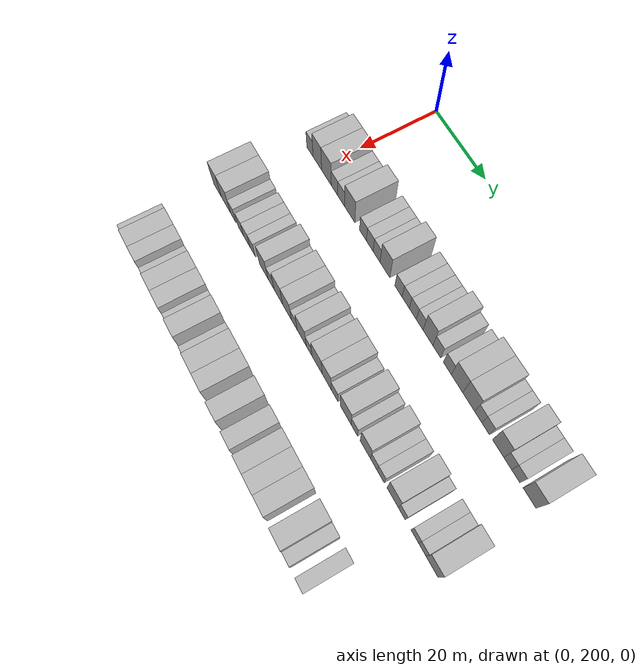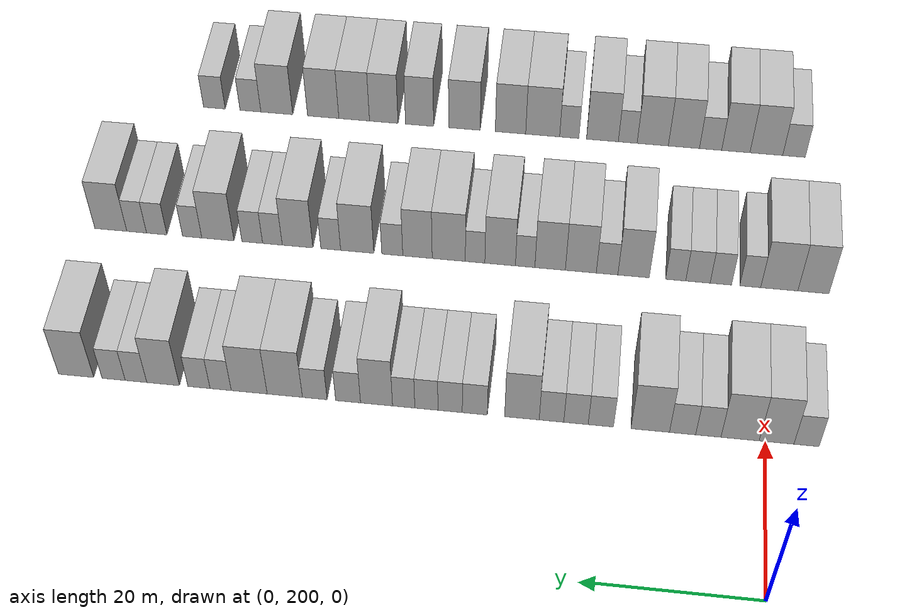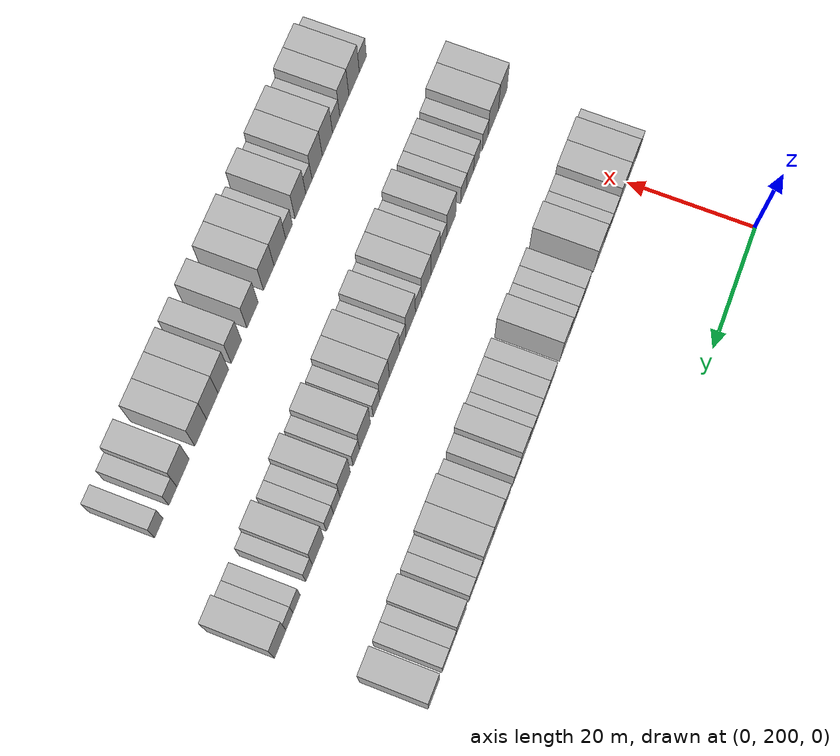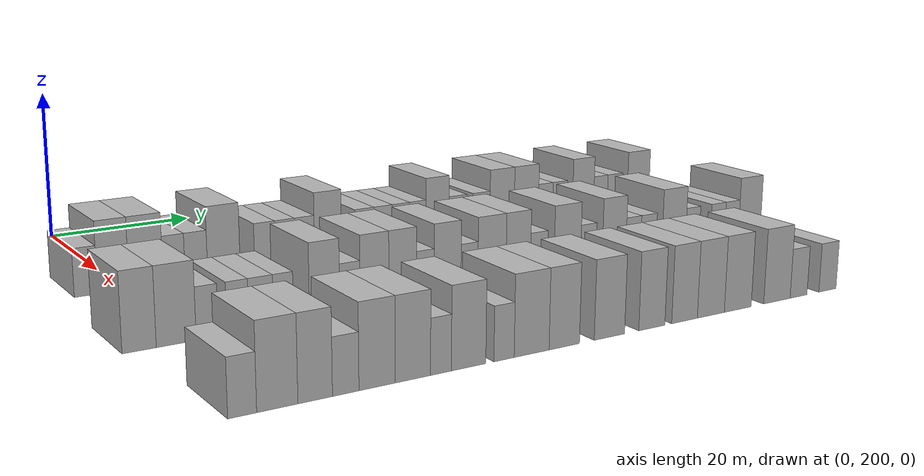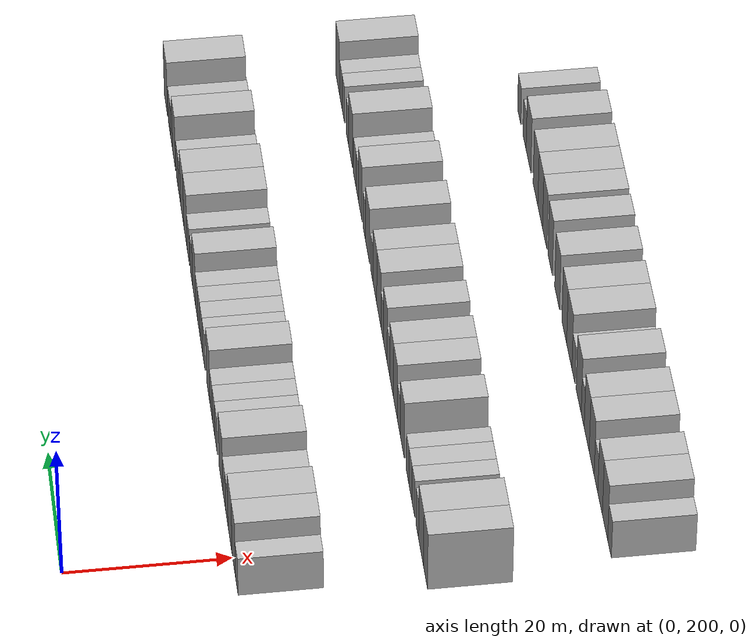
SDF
<sdf version="1.6">
 <world name="default">
  <model name="building_137">
   <static>1</static>
   <pose>25.0000 195.3471 0 0.000000 0.000000 0.000000</pose>
   <link name="link">
    <pose>0 0 3.00 0 0 0</pose>
    <collision name="collision"><geometry><box><size>10.0000 2.8296 6.0000</size></box></geometry></collision>
    <visual name="visual">
     <cast_shadows>0</cast_shadows>
     <geometry><box><size>10.0000 2.8296 6.0000</size></box></geometry>
     <material>
      <script>
       <uri>model://HANNAS_wall/materials/scripts</uri>
       <uri>model://HANNAS_wall/materials/textures</uri>
       <name>vrc/HANNAS_wall</name>
      </script>
     </material>
    </visual>
   </link>
  </model>
  <model name="building_138">
   <static>1</static>
   <pose>25.0000 198.7254 0 0.000000 0.000000 0.000000</pose>
   <link name="link">
    <pose>0 0 4.50 0 0 0</pose>
    <collision name="collision"><geometry><box><size>10.0000 3.9271 9.0000</size></box></geometry></collision>
    <visual name="visual">
     <cast_shadows>0</cast_shadows>
     <geometry><box><size>10.0000 3.9271 9.0000</size></box></geometry>
     <material>
      <script>
       <uri>model://HANNAS_wall/materials/scripts</uri>
       <uri>model://HANNAS_wall/materials/textures</uri>
       <name>vrc/HANNAS_wall</name>
      </script>
     </material>
    </visual>
   </link>
  </model>
  <model name="building_139">
   <static>1</static>
   <pose>25.0000 202.8539 0 0.000000 0.000000 0.000000</pose>
   <link name="link">
    <pose>0 0 4.50 0 0 0</pose>
    <collision name="collision"><geometry><box><size>10.0000 4.3299 9.0000</size></box></geometry></collision>
    <visual name="visual">
     <cast_shadows>0</cast_shadows>
     <geometry><box><size>10.0000 4.3299 9.0000</size></box></geometry>
     <material>
      <script>
       <uri>model://HANNAS_wall/materials/scripts</uri>
       <uri>model://HANNAS_wall/materials/textures</uri>
       <name>vrc/HANNAS_wall</name>
      </script>
     </material>
    </visual>
   </link>
  </model>
  <model name="building_140">
   <static>1</static>
   <pose>25.0000 206.4577 0 0.000000 0.000000 0.000000</pose>
   <link name="link">
    <pose>0 0 3.00 0 0 0</pose>
    <collision name="collision"><geometry><box><size>10.0000 2.8777 6.0000</size></box></geometry></collision>
    <visual name="visual">
     <cast_shadows>0</cast_shadows>
     <geometry><box><size>10.0000 2.8777 6.0000</size></box></geometry>
     <material>
      <script>
       <uri>model://HANNAS_wall/materials/scripts</uri>
       <uri>model://HANNAS_wall/materials/textures</uri>
       <name>vrc/HANNAS_wall</name>
      </script>
     </material>
    </visual>
   </link>
  </model>
  <model name="building_141">
   <static>1</static>
   <pose>25.0000 209.3831 0 0.000000 0.000000 0.000000</pose>
   <link name="link">
    <pose>0 0 3.00 0 0 0</pose>
    <collision name="collision"><geometry><box><size>10.0000 2.9731 6.0000</size></box></geometry></collision>
    <visual name="visual">
     <cast_shadows>0</cast_shadows>
     <geometry><box><size>10.0000 2.9731 6.0000</size></box></geometry>
     <material>
      <script>
       <uri>model://HANNAS_wall/materials/scripts</uri>
       <uri>model://HANNAS_wall/materials/textures</uri>
       <name>vrc/HANNAS_wall</name>
      </script>
     </material>
    </visual>
   </link>
  </model>
  <model name="building_142">
   <static>1</static>
   <pose>25.0000 213.0724 0 0.000000 0.000000 0.000000</pose>
   <link name="link">
    <pose>0 0 4.50 0 0 0</pose>
    <collision name="collision"><geometry><box><size>10.0000 4.4057 9.0000</size></box></geometry></collision>
    <visual name="visual">
     <cast_shadows>0</cast_shadows>
     <geometry><box><size>10.0000 4.4057 9.0000</size></box></geometry>
     <material>
      <script>
       <uri>model://HANNAS_wall/materials/scripts</uri>
       <uri>model://HANNAS_wall/materials/textures</uri>
       <name>vrc/HANNAS_wall</name>
      </script>
     </material>
    </visual>
   </link>
  </model>
  <model name="building_143">
   <static>1</static>
   <pose>25.0000 218.7259 0 0.000000 0.000000 0.000000</pose>
   <link name="link">
    <pose>0 0 3.00 0 0 0</pose>
    <collision name="collision"><geometry><box><size>10.0000 2.9013 6.0000</size></box></geometry></collision>
    <visual name="visual">
     <cast_shadows>0</cast_shadows>
     <geometry><box><size>10.0000 2.9013 6.0000</size></box></geometry>
     <material>
      <script>
       <uri>model://HANNAS_wall/materials/scripts</uri>
       <uri>model://HANNAS_wall/materials/textures</uri>
       <name>vrc/HANNAS_wall</name>
      </script>
     </material>
    </visual>
   </link>
  </model>
  <model name="building_144">
   <static>1</static>
   <pose>25.0000 221.5778 0 0.000000 0.000000 0.000000</pose>
   <link name="link">
    <pose>0 0 3.00 0 0 0</pose>
    <collision name="collision"><geometry><box><size>10.0000 2.8024 6.0000</size></box></geometry></collision>
    <visual name="visual">
     <cast_shadows>0</cast_shadows>
     <geometry><box><size>10.0000 2.8024 6.0000</size></box></geometry>
     <material>
      <script>
       <uri>model://HANNAS_wall/materials/scripts</uri>
       <uri>model://HANNAS_wall/materials/textures</uri>
       <name>vrc/HANNAS_wall</name>
      </script>
     </material>
    </visual>
   </link>
  </model>
  <model name="building_145">
   <static>1</static>
   <pose>25.0000 224.3917 0 0.000000 0.000000 0.000000</pose>
   <link name="link">
    <pose>0 0 3.00 0 0 0</pose>
    <collision name="collision"><geometry><box><size>10.0000 2.8254 6.0000</size></box></geometry></collision>
    <visual name="visual">
     <cast_shadows>0</cast_shadows>
     <geometry><box><size>10.0000 2.8254 6.0000</size></box></geometry>
     <material>
      <script>
       <uri>model://HANNAS_wall/materials/scripts</uri>
       <uri>model://HANNAS_wall/materials/textures</uri>
       <name>vrc/HANNAS_wall</name>
      </script>
     </material>
    </visual>
   </link>
  </model>
  <model name="building_146">
   <static>1</static>
   <pose>25.0000 227.7977 0 0.000000 0.000000 0.000000</pose>
   <link name="link">
    <pose>0 0 4.50 0 0 0</pose>
    <collision name="collision"><geometry><box><size>10.0000 3.9866 9.0000</size></box></geometry></collision>
    <visual name="visual">
     <cast_shadows>0</cast_shadows>
     <geometry><box><size>10.0000 3.9866 9.0000</size></box></geometry>
     <material>
      <script>
       <uri>model://HANNAS_wall/materials/scripts</uri>
       <uri>model://HANNAS_wall/materials/textures</uri>
       <name>vrc/HANNAS_wall</name>
      </script>
     </material>
    </visual>
   </link>
  </model>
  <model name="building_147">
   <static>1</static>
   <pose>25.0000 233.2448 0 0.000000 0.000000 0.000000</pose>
   <link name="link">
    <pose>0 0 3.00 0 0 0</pose>
    <collision name="collision"><geometry><box><size>10.0000 2.9077 6.0000</size></box></geometry></collision>
    <visual name="visual">
     <cast_shadows>0</cast_shadows>
     <geometry><box><size>10.0000 2.9077 6.0000</size></box></geometry>
     <material>
      <script>
       <uri>model://HANNAS_wall/materials/scripts</uri>
       <uri>model://HANNAS_wall/materials/textures</uri>
       <name>vrc/HANNAS_wall</name>
      </script>
     </material>
    </visual>
   </link>
  </model>
  <model name="building_148">
   <static>1</static>
   <pose>25.0000 236.1060 0 0.000000 0.000000 0.000000</pose>
   <link name="link">
    <pose>0 0 3.00 0 0 0</pose>
    <collision name="collision"><geometry><box><size>10.0000 2.8147 6.0000</size></box></geometry></collision>
    <visual name="visual">
     <cast_shadows>0</cast_shadows>
     <geometry><box><size>10.0000 2.8147 6.0000</size></box></geometry>
     <material>
      <script>
       <uri>model://HANNAS_wall/materials/scripts</uri>
       <uri>model://HANNAS_wall/materials/textures</uri>
       <name>vrc/HANNAS_wall</name>
      </script>
     </material>
    </visual>
   </link>
  </model>
  <model name="building_149">
   <static>1</static>
   <pose>25.0000 238.8617 0 0.000000 0.000000 0.000000</pose>
   <link name="link">
    <pose>0 0 3.00 0 0 0</pose>
    <collision name="collision"><geometry><box><size>10.0000 2.6967 6.0000</size></box></geometry></collision>
    <visual name="visual">
     <cast_shadows>0</cast_shadows>
     <geometry><box><size>10.0000 2.6967 6.0000</size></box></geometry>
     <material>
      <script>
       <uri>model://HANNAS_wall/materials/scripts</uri>
       <uri>model://HANNAS_wall/materials/textures</uri>
       <name>vrc/HANNAS_wall</name>
      </script>
     </material>
    </visual>
   </link>
  </model>
  <model name="building_150">
   <static>1</static>
   <pose>25.0000 241.5070 0 0.000000 0.000000 0.000000</pose>
   <link name="link">
    <pose>0 0 3.00 0 0 0</pose>
    <collision name="collision"><geometry><box><size>10.0000 2.5939 6.0000</size></box></geometry></collision>
    <visual name="visual">
     <cast_shadows>0</cast_shadows>
     <geometry><box><size>10.0000 2.5939 6.0000</size></box></geometry>
     <material>
      <script>
       <uri>model://HANNAS_wall/materials/scripts</uri>
       <uri>model://HANNAS_wall/materials/textures</uri>
       <name>vrc/HANNAS_wall</name>
      </script>
     </material>
    </visual>
   </link>
  </model>
  <model name="building_151">
   <static>1</static>
   <pose>25.0000 244.6743 0 0.000000 0.000000 0.000000</pose>
   <link name="link">
    <pose>0 0 4.50 0 0 0</pose>
    <collision name="collision"><geometry><box><size>10.0000 3.7406 9.0000</size></box></geometry></collision>
    <visual name="visual">
     <cast_shadows>0</cast_shadows>
     <geometry><box><size>10.0000 3.7406 9.0000</size></box></geometry>
     <material>
      <script>
       <uri>model://HANNAS_wall/materials/scripts</uri>
       <uri>model://HANNAS_wall/materials/textures</uri>
       <name>vrc/HANNAS_wall</name>
      </script>
     </material>
    </visual>
   </link>
  </model>
  <model name="building_152">
   <static>1</static>
   <pose>25.0000 247.9995 0 0.000000 0.000000 0.000000</pose>
   <link name="link">
    <pose>0 0 3.00 0 0 0</pose>
    <collision name="collision"><geometry><box><size>10.0000 2.9098 6.0000</size></box></geometry></collision>
    <visual name="visual">
     <cast_shadows>0</cast_shadows>
     <geometry><box><size>10.0000 2.9098 6.0000</size></box></geometry>
     <material>
      <script>
       <uri>model://HANNAS_wall/materials/scripts</uri>
       <uri>model://HANNAS_wall/materials/textures</uri>
       <name>vrc/HANNAS_wall</name>
      </script>
     </material>
    </visual>
   </link>
  </model>
  <model name="building_153">
   <static>1</static>
   <pose>25.0000 251.9038 0 0.000000 0.000000 0.000000</pose>
   <link name="link">
    <pose>0 0 3.00 0 0 0</pose>
    <collision name="collision"><geometry><box><size>10.0000 2.8989 6.0000</size></box></geometry></collision>
    <visual name="visual">
     <cast_shadows>0</cast_shadows>
     <geometry><box><size>10.0000 2.8989 6.0000</size></box></geometry>
     <material>
      <script>
       <uri>model://HANNAS_wall/materials/scripts</uri>
       <uri>model://HANNAS_wall/materials/textures</uri>
       <name>vrc/HANNAS_wall</name>
      </script>
     </material>
    </visual>
   </link>
  </model>
  <model name="building_154">
   <static>1</static>
   <pose>25.0000 255.4297 0 0.000000 0.000000 0.000000</pose>
   <link name="link">
    <pose>0 0 4.50 0 0 0</pose>
    <collision name="collision"><geometry><box><size>10.0000 4.1528 9.0000</size></box></geometry></collision>
    <visual name="visual">
     <cast_shadows>0</cast_shadows>
     <geometry><box><size>10.0000 4.1528 9.0000</size></box></geometry>
     <material>
      <script>
       <uri>model://HANNAS_wall/materials/scripts</uri>
       <uri>model://HANNAS_wall/materials/textures</uri>
       <name>vrc/HANNAS_wall</name>
      </script>
     </material>
    </visual>
   </link>
  </model>
  <model name="building_155">
   <static>1</static>
   <pose>25.0000 259.6275 0 0.000000 0.000000 0.000000</pose>
   <link name="link">
    <pose>0 0 4.50 0 0 0</pose>
    <collision name="collision"><geometry><box><size>10.0000 4.2427 9.0000</size></box></geometry></collision>
    <visual name="visual">
     <cast_shadows>0</cast_shadows>
     <geometry><box><size>10.0000 4.2427 9.0000</size></box></geometry>
     <material>
      <script>
       <uri>model://HANNAS_wall/materials/scripts</uri>
       <uri>model://HANNAS_wall/materials/textures</uri>
       <name>vrc/HANNAS_wall</name>
      </script>
     </material>
    </visual>
   </link>
  </model>
  <model name="building_156">
   <static>1</static>
   <pose>25.0000 263.0029 0 0.000000 0.000000 0.000000</pose>
   <link name="link">
    <pose>0 0 3.00 0 0 0</pose>
    <collision name="collision"><geometry><box><size>10.0000 2.5082 6.0000</size></box></geometry></collision>
    <visual name="visual">
     <cast_shadows>0</cast_shadows>
     <geometry><box><size>10.0000 2.5082 6.0000</size></box></geometry>
     <material>
      <script>
       <uri>model://HANNAS_wall/materials/scripts</uri>
       <uri>model://HANNAS_wall/materials/textures</uri>
       <name>vrc/HANNAS_wall</name>
      </script>
     </material>
    </visual>
   </link>
  </model>
  <model name="building_157">
   <static>1</static>
   <pose>25.0000 265.5713 0 0.000000 0.000000 0.000000</pose>
   <link name="link">
    <pose>0 0 3.00 0 0 0</pose>
    <collision name="collision"><geometry><box><size>10.0000 2.6285 6.0000</size></box></geometry></collision>
    <visual name="visual">
     <cast_shadows>0</cast_shadows>
     <geometry><box><size>10.0000 2.6285 6.0000</size></box></geometry>
     <material>
      <script>
       <uri>model://HANNAS_wall/materials/scripts</uri>
       <uri>model://HANNAS_wall/materials/textures</uri>
       <name>vrc/HANNAS_wall</name>
      </script>
     </material>
    </visual>
   </link>
  </model>
  <model name="building_158">
   <static>1</static>
   <pose>25.0000 269.8299 0 0.000000 0.000000 0.000000</pose>
   <link name="link">
    <pose>0 0 4.50 0 0 0</pose>
    <collision name="collision"><geometry><box><size>10.0000 3.8887 9.0000</size></box></geometry></collision>
    <visual name="visual">
     <cast_shadows>0</cast_shadows>
     <geometry><box><size>10.0000 3.8887 9.0000</size></box></geometry>
     <material>
      <script>
       <uri>model://HANNAS_wall/materials/scripts</uri>
       <uri>model://HANNAS_wall/materials/textures</uri>
       <name>vrc/HANNAS_wall</name>
      </script>
     </material>
    </visual>
   </link>
  </model>
  <model name="building_159">
   <static>1</static>
   <pose>25.0000 273.0589 0 0.000000 0.000000 0.000000</pose>
   <link name="link">
    <pose>0 0 3.00 0 0 0</pose>
    <collision name="collision"><geometry><box><size>10.0000 2.5694 6.0000</size></box></geometry></collision>
    <visual name="visual">
     <cast_shadows>0</cast_shadows>
     <geometry><box><size>10.0000 2.5694 6.0000</size></box></geometry>
     <material>
      <script>
       <uri>model://HANNAS_wall/materials/scripts</uri>
       <uri>model://HANNAS_wall/materials/textures</uri>
       <name>vrc/HANNAS_wall</name>
      </script>
     </material>
    </visual>
   </link>
  </model>
  <model name="building_160">
   <static>1</static>
   <pose>25.0000 275.7272 0 0.000000 0.000000 0.000000</pose>
   <link name="link">
    <pose>0 0 3.00 0 0 0</pose>
    <collision name="collision"><geometry><box><size>10.0000 2.7672 6.0000</size></box></geometry></collision>
    <visual name="visual">
     <cast_shadows>0</cast_shadows>
     <geometry><box><size>10.0000 2.7672 6.0000</size></box></geometry>
     <material>
      <script>
       <uri>model://HANNAS_wall/materials/scripts</uri>
       <uri>model://HANNAS_wall/materials/textures</uri>
       <name>vrc/HANNAS_wall</name>
      </script>
     </material>
    </visual>
   </link>
  </model>
  <model name="building_161">
   <static>1</static>
   <pose>25.0000 280.2141 0 0.000000 0.000000 0.000000</pose>
   <link name="link">
    <pose>0 0 4.50 0 0 0</pose>
    <collision name="collision"><geometry><box><size>10.0000 4.2066 9.0000</size></box></geometry></collision>
    <visual name="visual">
     <cast_shadows>0</cast_shadows>
     <geometry><box><size>10.0000 4.2066 9.0000</size></box></geometry>
     <material>
      <script>
       <uri>model://HANNAS_wall/materials/scripts</uri>
       <uri>model://HANNAS_wall/materials/textures</uri>
       <name>vrc/HANNAS_wall</name>
      </script>
     </material>
    </visual>
   </link>
  </model>
  <model name="building_324">
   <static>1</static>
   <pose>47.0000 194.0993 0 0.000000 0.000000 0.000000</pose>
   <link name="link">
    <pose>0 0 4.50 0 0 0</pose>
    <collision name="collision"><geometry><box><size>10.0000 3.7563 9.0000</size></box></geometry></collision>
    <visual name="visual">
     <cast_shadows>0</cast_shadows>
     <geometry><box><size>10.0000 3.7563 9.0000</size></box></geometry>
     <material>
      <script>
       <uri>model://HANNAS_wall/materials/scripts</uri>
       <uri>model://HANNAS_wall/materials/textures</uri>
       <name>vrc/HANNAS_wall</name>
      </script>
     </material>
    </visual>
   </link>
  </model>
  <model name="building_325">
   <static>1</static>
   <pose>47.0000 198.2261 0 0.000000 0.000000 0.000000</pose>
   <link name="link">
    <pose>0 0 4.50 0 0 0</pose>
    <collision name="collision"><geometry><box><size>10.0000 4.4972 9.0000</size></box></geometry></collision>
    <visual name="visual">
     <cast_shadows>0</cast_shadows>
     <geometry><box><size>10.0000 4.4972 9.0000</size></box></geometry>
     <material>
      <script>
       <uri>model://HANNAS_wall/materials/scripts</uri>
       <uri>model://HANNAS_wall/materials/textures</uri>
       <name>vrc/HANNAS_wall</name>
      </script>
     </material>
    </visual>
   </link>
  </model>
  <model name="building_326">
   <static>1</static>
   <pose>47.0000 201.7456 0 0.000000 0.000000 0.000000</pose>
   <link name="link">
    <pose>0 0 3.00 0 0 0</pose>
    <collision name="collision"><geometry><box><size>10.0000 2.5417 6.0000</size></box></geometry></collision>
    <visual name="visual">
     <cast_shadows>0</cast_shadows>
     <geometry><box><size>10.0000 2.5417 6.0000</size></box></geometry>
     <material>
      <script>
       <uri>model://HANNAS_wall/materials/scripts</uri>
       <uri>model://HANNAS_wall/materials/textures</uri>
       <name>vrc/HANNAS_wall</name>
      </script>
     </material>
    </visual>
   </link>
  </model>
  <model name="building_327">
   <static>1</static>
   <pose>47.0000 205.3173 0 0.000000 0.000000 0.000000</pose>
   <link name="link">
    <pose>0 0 3.00 0 0 0</pose>
    <collision name="collision"><geometry><box><size>10.0000 2.6016 6.0000</size></box></geometry></collision>
    <visual name="visual">
     <cast_shadows>0</cast_shadows>
     <geometry><box><size>10.0000 2.6016 6.0000</size></box></geometry>
     <material>
      <script>
       <uri>model://HANNAS_wall/materials/scripts</uri>
       <uri>model://HANNAS_wall/materials/textures</uri>
       <name>vrc/HANNAS_wall</name>
      </script>
     </material>
    </visual>
   </link>
  </model>
  <model name="building_328">
   <static>1</static>
   <pose>47.0000 208.1079 0 0.000000 0.000000 0.000000</pose>
   <link name="link">
    <pose>0 0 3.00 0 0 0</pose>
    <collision name="collision"><geometry><box><size>10.0000 2.9795 6.0000</size></box></geometry></collision>
    <visual name="visual">
     <cast_shadows>0</cast_shadows>
     <geometry><box><size>10.0000 2.9795 6.0000</size></box></geometry>
     <material>
      <script>
       <uri>model://HANNAS_wall/materials/scripts</uri>
       <uri>model://HANNAS_wall/materials/textures</uri>
       <name>vrc/HANNAS_wall</name>
      </script>
     </material>
    </visual>
   </link>
  </model>
  <model name="building_329">
   <static>1</static>
   <pose>47.0000 210.8288 0 0.000000 0.000000 0.000000</pose>
   <link name="link">
    <pose>0 0 3.00 0 0 0</pose>
    <collision name="collision"><geometry><box><size>10.0000 2.4624 6.0000</size></box></geometry></collision>
    <visual name="visual">
     <cast_shadows>0</cast_shadows>
     <geometry><box><size>10.0000 2.4624 6.0000</size></box></geometry>
     <material>
      <script>
       <uri>model://HANNAS_wall/materials/scripts</uri>
       <uri>model://HANNAS_wall/materials/textures</uri>
       <name>vrc/HANNAS_wall</name>
      </script>
     </material>
    </visual>
   </link>
  </model>
  <model name="building_330">
   <static>1</static>
   <pose>47.0000 215.9818 0 0.000000 0.000000 0.000000</pose>
   <link name="link">
    <pose>0 0 4.50 0 0 0</pose>
    <collision name="collision"><geometry><box><size>10.0000 3.8436 9.0000</size></box></geometry></collision>
    <visual name="visual">
     <cast_shadows>0</cast_shadows>
     <geometry><box><size>10.0000 3.8436 9.0000</size></box></geometry>
     <material>
      <script>
       <uri>model://HANNAS_wall/materials/scripts</uri>
       <uri>model://HANNAS_wall/materials/textures</uri>
       <name>vrc/HANNAS_wall</name>
      </script>
     </material>
    </visual>
   </link>
  </model>
  <model name="building_331">
   <static>1</static>
   <pose>47.0000 219.2298 0 0.000000 0.000000 0.000000</pose>
   <link name="link">
    <pose>0 0 3.00 0 0 0</pose>
    <collision name="collision"><geometry><box><size>10.0000 2.6523 6.0000</size></box></geometry></collision>
    <visual name="visual">
     <cast_shadows>0</cast_shadows>
     <geometry><box><size>10.0000 2.6523 6.0000</size></box></geometry>
     <material>
      <script>
       <uri>model://HANNAS_wall/materials/scripts</uri>
       <uri>model://HANNAS_wall/materials/textures</uri>
       <name>vrc/HANNAS_wall</name>
      </script>
     </material>
    </visual>
   </link>
  </model>
  <model name="building_332">
   <static>1</static>
   <pose>47.0000 222.4602 0 0.000000 0.000000 0.000000</pose>
   <link name="link">
    <pose>0 0 4.50 0 0 0</pose>
    <collision name="collision"><geometry><box><size>10.0000 3.8084 9.0000</size></box></geometry></collision>
    <visual name="visual">
     <cast_shadows>0</cast_shadows>
     <geometry><box><size>10.0000 3.8084 9.0000</size></box></geometry>
     <material>
      <script>
       <uri>model://HANNAS_wall/materials/scripts</uri>
       <uri>model://HANNAS_wall/materials/textures</uri>
       <name>vrc/HANNAS_wall</name>
      </script>
     </material>
    </visual>
   </link>
  </model>
  <model name="building_333">
   <static>1</static>
   <pose>47.0000 226.2442 0 0.000000 0.000000 0.000000</pose>
   <link name="link">
    <pose>0 0 4.50 0 0 0</pose>
    <collision name="collision"><geometry><box><size>10.0000 3.7596 9.0000</size></box></geometry></collision>
    <visual name="visual">
     <cast_shadows>0</cast_shadows>
     <geometry><box><size>10.0000 3.7596 9.0000</size></box></geometry>
     <material>
      <script>
       <uri>model://HANNAS_wall/materials/scripts</uri>
       <uri>model://HANNAS_wall/materials/textures</uri>
       <name>vrc/HANNAS_wall</name>
      </script>
     </material>
    </visual>
   </link>
  </model>
  <model name="building_334">
   <static>1</static>
   <pose>47.0000 229.3244 0 0.000000 0.000000 0.000000</pose>
   <link name="link">
    <pose>0 0 3.00 0 0 0</pose>
    <collision name="collision"><geometry><box><size>10.0000 2.4007 6.0000</size></box></geometry></collision>
    <visual name="visual">
     <cast_shadows>0</cast_shadows>
     <geometry><box><size>10.0000 2.4007 6.0000</size></box></geometry>
     <material>
      <script>
       <uri>model://HANNAS_wall/materials/scripts</uri>
       <uri>model://HANNAS_wall/materials/textures</uri>
       <name>vrc/HANNAS_wall</name>
      </script>
     </material>
    </visual>
   </link>
  </model>
  <model name="building_335">
   <static>1</static>
   <pose>47.0000 232.4208 0 0.000000 0.000000 0.000000</pose>
   <link name="link">
    <pose>0 0 4.50 0 0 0</pose>
    <collision name="collision"><geometry><box><size>10.0000 3.7921 9.0000</size></box></geometry></collision>
    <visual name="visual">
     <cast_shadows>0</cast_shadows>
     <geometry><box><size>10.0000 3.7921 9.0000</size></box></geometry>
     <material>
      <script>
       <uri>model://HANNAS_wall/materials/scripts</uri>
       <uri>model://HANNAS_wall/materials/textures</uri>
       <name>vrc/HANNAS_wall</name>
      </script>
     </material>
    </visual>
   </link>
  </model>
  <model name="building_336">
   <static>1</static>
   <pose>47.0000 235.5298 0 0.000000 0.000000 0.000000</pose>
   <link name="link">
    <pose>0 0 3.00 0 0 0</pose>
    <collision name="collision"><geometry><box><size>10.0000 2.4260 6.0000</size></box></geometry></collision>
    <visual name="visual">
     <cast_shadows>0</cast_shadows>
     <geometry><box><size>10.0000 2.4260 6.0000</size></box></geometry>
     <material>
      <script>
       <uri>model://HANNAS_wall/materials/scripts</uri>
       <uri>model://HANNAS_wall/materials/textures</uri>
       <name>vrc/HANNAS_wall</name>
      </script>
     </material>
    </visual>
   </link>
  </model>
  <model name="building_337">
   <static>1</static>
   <pose>47.0000 238.8038 0 0.000000 0.000000 0.000000</pose>
   <link name="link">
    <pose>0 0 4.50 0 0 0</pose>
    <collision name="collision"><geometry><box><size>10.0000 4.1220 9.0000</size></box></geometry></collision>
    <visual name="visual">
     <cast_shadows>0</cast_shadows>
     <geometry><box><size>10.0000 4.1220 9.0000</size></box></geometry>
     <material>
      <script>
       <uri>model://HANNAS_wall/materials/scripts</uri>
       <uri>model://HANNAS_wall/materials/textures</uri>
       <name>vrc/HANNAS_wall</name>
      </script>
     </material>
    </visual>
   </link>
  </model>
  <model name="building_338">
   <static>1</static>
   <pose>47.0000 242.7006 0 0.000000 0.000000 0.000000</pose>
   <link name="link">
    <pose>0 0 4.50 0 0 0</pose>
    <collision name="collision"><geometry><box><size>10.0000 3.6716 9.0000</size></box></geometry></collision>
    <visual name="visual">
     <cast_shadows>0</cast_shadows>
     <geometry><box><size>10.0000 3.6716 9.0000</size></box></geometry>
     <material>
      <script>
       <uri>model://HANNAS_wall/materials/scripts</uri>
       <uri>model://HANNAS_wall/materials/textures</uri>
       <name>vrc/HANNAS_wall</name>
      </script>
     </material>
    </visual>
   </link>
  </model>
  <model name="building_339">
   <static>1</static>
   <pose>47.0000 245.8478 0 0.000000 0.000000 0.000000</pose>
   <link name="link">
    <pose>0 0 3.00 0 0 0</pose>
    <collision name="collision"><geometry><box><size>10.0000 2.6228 6.0000</size></box></geometry></collision>
    <visual name="visual">
     <cast_shadows>0</cast_shadows>
     <geometry><box><size>10.0000 2.6228 6.0000</size></box></geometry>
     <material>
      <script>
       <uri>model://HANNAS_wall/materials/scripts</uri>
       <uri>model://HANNAS_wall/materials/textures</uri>
       <name>vrc/HANNAS_wall</name>
      </script>
     </material>
    </visual>
   </link>
  </model>
  <model name="building_340">
   <static>1</static>
   <pose>47.0000 250.2414 0 0.000000 0.000000 0.000000</pose>
   <link name="link">
    <pose>0 0 4.50 0 0 0</pose>
    <collision name="collision"><geometry><box><size>10.0000 4.1645 9.0000</size></box></geometry></collision>
    <visual name="visual">
     <cast_shadows>0</cast_shadows>
     <geometry><box><size>10.0000 4.1645 9.0000</size></box></geometry>
     <material>
      <script>
       <uri>model://HANNAS_wall/materials/scripts</uri>
       <uri>model://HANNAS_wall/materials/textures</uri>
       <name>vrc/HANNAS_wall</name>
      </script>
     </material>
    </visual>
   </link>
  </model>
  <model name="building_341">
   <static>1</static>
   <pose>47.0000 253.5663 0 0.000000 0.000000 0.000000</pose>
   <link name="link">
    <pose>0 0 3.00 0 0 0</pose>
    <collision name="collision"><geometry><box><size>10.0000 2.4854 6.0000</size></box></geometry></collision>
    <visual name="visual">
     <cast_shadows>0</cast_shadows>
     <geometry><box><size>10.0000 2.4854 6.0000</size></box></geometry>
     <material>
      <script>
       <uri>model://HANNAS_wall/materials/scripts</uri>
       <uri>model://HANNAS_wall/materials/textures</uri>
       <name>vrc/HANNAS_wall</name>
      </script>
     </material>
    </visual>
   </link>
  </model>
  <model name="building_342">
   <static>1</static>
   <pose>47.0000 257.7401 0 0.000000 0.000000 0.000000</pose>
   <link name="link">
    <pose>0 0 4.50 0 0 0</pose>
    <collision name="collision"><geometry><box><size>10.0000 3.8623 9.0000</size></box></geometry></collision>
    <visual name="visual">
     <cast_shadows>0</cast_shadows>
     <geometry><box><size>10.0000 3.8623 9.0000</size></box></geometry>
     <material>
      <script>
       <uri>model://HANNAS_wall/materials/scripts</uri>
       <uri>model://HANNAS_wall/materials/textures</uri>
       <name>vrc/HANNAS_wall</name>
      </script>
     </material>
    </visual>
   </link>
  </model>
  <model name="building_343">
   <static>1</static>
   <pose>47.0000 260.9132 0 0.000000 0.000000 0.000000</pose>
   <link name="link">
    <pose>0 0 3.00 0 0 0</pose>
    <collision name="collision"><geometry><box><size>10.0000 2.4839 6.0000</size></box></geometry></collision>
    <visual name="visual">
     <cast_shadows>0</cast_shadows>
     <geometry><box><size>10.0000 2.4839 6.0000</size></box></geometry>
     <material>
      <script>
       <uri>model://HANNAS_wall/materials/scripts</uri>
       <uri>model://HANNAS_wall/materials/textures</uri>
       <name>vrc/HANNAS_wall</name>
      </script>
     </material>
    </visual>
   </link>
  </model>
  <model name="building_344">
   <static>1</static>
   <pose>47.0000 263.4642 0 0.000000 0.000000 0.000000</pose>
   <link name="link">
    <pose>0 0 3.00 0 0 0</pose>
    <collision name="collision"><geometry><box><size>10.0000 2.6181 6.0000</size></box></geometry></collision>
    <visual name="visual">
     <cast_shadows>0</cast_shadows>
     <geometry><box><size>10.0000 2.6181 6.0000</size></box></geometry>
     <material>
      <script>
       <uri>model://HANNAS_wall/materials/scripts</uri>
       <uri>model://HANNAS_wall/materials/textures</uri>
       <name>vrc/HANNAS_wall</name>
      </script>
     </material>
    </visual>
   </link>
  </model>
  <model name="building_345">
   <static>1</static>
   <pose>47.0000 267.8195 0 0.000000 0.000000 0.000000</pose>
   <link name="link">
    <pose>0 0 4.50 0 0 0</pose>
    <collision name="collision"><geometry><box><size>10.0000 4.0925 9.0000</size></box></geometry></collision>
    <visual name="visual">
     <cast_shadows>0</cast_shadows>
     <geometry><box><size>10.0000 4.0925 9.0000</size></box></geometry>
     <material>
      <script>
       <uri>model://HANNAS_wall/materials/scripts</uri>
       <uri>model://HANNAS_wall/materials/textures</uri>
       <name>vrc/HANNAS_wall</name>
      </script>
     </material>
    </visual>
   </link>
  </model>
  <model name="building_346">
   <static>1</static>
   <pose>47.0000 271.0869 0 0.000000 0.000000 0.000000</pose>
   <link name="link">
    <pose>0 0 3.00 0 0 0</pose>
    <collision name="collision"><geometry><box><size>10.0000 2.4423 6.0000</size></box></geometry></collision>
    <visual name="visual">
     <cast_shadows>0</cast_shadows>
     <geometry><box><size>10.0000 2.4423 6.0000</size></box></geometry>
     <material>
      <script>
       <uri>model://HANNAS_wall/materials/scripts</uri>
       <uri>model://HANNAS_wall/materials/textures</uri>
       <name>vrc/HANNAS_wall</name>
      </script>
     </material>
    </visual>
   </link>
  </model>
  <model name="building_347">
   <static>1</static>
   <pose>47.0000 275.6099 0 0.000000 0.000000 0.000000</pose>
   <link name="link">
    <pose>0 0 3.00 0 0 0</pose>
    <collision name="collision"><geometry><box><size>10.0000 2.6035 6.0000</size></box></geometry></collision>
    <visual name="visual">
     <cast_shadows>0</cast_shadows>
     <geometry><box><size>10.0000 2.6035 6.0000</size></box></geometry>
     <material>
      <script>
       <uri>model://HANNAS_wall/materials/scripts</uri>
       <uri>model://HANNAS_wall/materials/textures</uri>
       <name>vrc/HANNAS_wall</name>
      </script>
     </material>
    </visual>
   </link>
  </model>
  <model name="building_348">
   <static>1</static>
   <pose>47.0000 278.1743 0 0.000000 0.000000 0.000000</pose>
   <link name="link">
    <pose>0 0 3.00 0 0 0</pose>
    <collision name="collision"><geometry><box><size>10.0000 2.5253 6.0000</size></box></geometry></collision>
    <visual name="visual">
     <cast_shadows>0</cast_shadows>
     <geometry><box><size>10.0000 2.5253 6.0000</size></box></geometry>
     <material>
      <script>
       <uri>model://HANNAS_wall/materials/scripts</uri>
       <uri>model://HANNAS_wall/materials/textures</uri>
       <name>vrc/HANNAS_wall</name>
      </script>
     </material>
    </visual>
   </link>
  </model>
  <model name="building_349">
   <static>1</static>
   <pose>47.0000 281.4816 0 0.000000 0.000000 0.000000</pose>
   <link name="link">
    <pose>0 0 4.50 0 0 0</pose>
    <collision name="collision"><geometry><box><size>10.0000 4.0894 9.0000</size></box></geometry></collision>
    <visual name="visual">
     <cast_shadows>0</cast_shadows>
     <geometry><box><size>10.0000 4.0894 9.0000</size></box></geometry>
     <material>
      <script>
       <uri>model://HANNAS_wall/materials/scripts</uri>
       <uri>model://HANNAS_wall/materials/textures</uri>
       <name>vrc/HANNAS_wall</name>
      </script>
     </material>
    </visual>
   </link>
  </model>
  <model name="building_517">
   <static>1</static>
   <pose>69.0000 196.1293 0 0.000000 0.000000 0.000000</pose>
   <link name="link">
    <pose>0 0 3.00 0 0 0</pose>
    <collision name="collision"><geometry><box><size>10.0000 2.9032 6.0000</size></box></geometry></collision>
    <visual name="visual">
     <cast_shadows>0</cast_shadows>
     <geometry><box><size>10.0000 2.9032 6.0000</size></box></geometry>
     <material>
      <script>
       <uri>model://HANNAS_wall/materials/scripts</uri>
       <uri>model://HANNAS_wall/materials/textures</uri>
       <name>vrc/HANNAS_wall</name>
      </script>
     </material>
    </visual>
   </link>
  </model>
  <model name="building_518">
   <static>1</static>
   <pose>69.0000 199.7021 0 0.000000 0.000000 0.000000</pose>
   <link name="link">
    <pose>0 0 4.50 0 0 0</pose>
    <collision name="collision"><geometry><box><size>10.0000 4.2424 9.0000</size></box></geometry></collision>
    <visual name="visual">
     <cast_shadows>0</cast_shadows>
     <geometry><box><size>10.0000 4.2424 9.0000</size></box></geometry>
     <material>
      <script>
       <uri>model://HANNAS_wall/materials/scripts</uri>
       <uri>model://HANNAS_wall/materials/textures</uri>
       <name>vrc/HANNAS_wall</name>
      </script>
     </material>
    </visual>
   </link>
  </model>
  <model name="building_519">
   <static>1</static>
   <pose>69.0000 203.6587 0 0.000000 0.000000 0.000000</pose>
   <link name="link">
    <pose>0 0 4.50 0 0 0</pose>
    <collision name="collision"><geometry><box><size>10.0000 3.6710 9.0000</size></box></geometry></collision>
    <visual name="visual">
     <cast_shadows>0</cast_shadows>
     <geometry><box><size>10.0000 3.6710 9.0000</size></box></geometry>
     <material>
      <script>
       <uri>model://HANNAS_wall/materials/scripts</uri>
       <uri>model://HANNAS_wall/materials/textures</uri>
       <name>vrc/HANNAS_wall</name>
      </script>
     </material>
    </visual>
   </link>
  </model>
  <model name="building_520">
   <static>1</static>
   <pose>69.0000 206.9376 0 0.000000 0.000000 0.000000</pose>
   <link name="link">
    <pose>0 0 3.00 0 0 0</pose>
    <collision name="collision"><geometry><box><size>10.0000 2.8868 6.0000</size></box></geometry></collision>
    <visual name="visual">
     <cast_shadows>0</cast_shadows>
     <geometry><box><size>10.0000 2.8868 6.0000</size></box></geometry>
     <material>
      <script>
       <uri>model://HANNAS_wall/materials/scripts</uri>
       <uri>model://HANNAS_wall/materials/textures</uri>
       <name>vrc/HANNAS_wall</name>
      </script>
     </material>
    </visual>
   </link>
  </model>
  <model name="building_521">
   <static>1</static>
   <pose>69.0000 210.4119 0 0.000000 0.000000 0.000000</pose>
   <link name="link">
    <pose>0 0 4.50 0 0 0</pose>
    <collision name="collision"><geometry><box><size>10.0000 4.0616 9.0000</size></box></geometry></collision>
    <visual name="visual">
     <cast_shadows>0</cast_shadows>
     <geometry><box><size>10.0000 4.0616 9.0000</size></box></geometry>
     <material>
      <script>
       <uri>model://HANNAS_wall/materials/scripts</uri>
       <uri>model://HANNAS_wall/materials/textures</uri>
       <name>vrc/HANNAS_wall</name>
      </script>
     </material>
    </visual>
   </link>
  </model>
  <model name="building_522">
   <static>1</static>
   <pose>69.0000 214.4803 0 0.000000 0.000000 0.000000</pose>
   <link name="link">
    <pose>0 0 4.50 0 0 0</pose>
    <collision name="collision"><geometry><box><size>10.0000 4.0753 9.0000</size></box></geometry></collision>
    <visual name="visual">
     <cast_shadows>0</cast_shadows>
     <geometry><box><size>10.0000 4.0753 9.0000</size></box></geometry>
     <material>
      <script>
       <uri>model://HANNAS_wall/materials/scripts</uri>
       <uri>model://HANNAS_wall/materials/textures</uri>
       <name>vrc/HANNAS_wall</name>
      </script>
     </material>
    </visual>
   </link>
  </model>
  <model name="building_523">
   <static>1</static>
   <pose>69.0000 217.7477 0 0.000000 0.000000 0.000000</pose>
   <link name="link">
    <pose>0 0 3.00 0 0 0</pose>
    <collision name="collision"><geometry><box><size>10.0000 2.4594 6.0000</size></box></geometry></collision>
    <visual name="visual">
     <cast_shadows>0</cast_shadows>
     <geometry><box><size>10.0000 2.4594 6.0000</size></box></geometry>
     <material>
      <script>
       <uri>model://HANNAS_wall/materials/scripts</uri>
       <uri>model://HANNAS_wall/materials/textures</uri>
       <name>vrc/HANNAS_wall</name>
      </script>
     </material>
    </visual>
   </link>
  </model>
  <model name="building_524">
   <static>1</static>
   <pose>69.0000 221.0626 0 0.000000 0.000000 0.000000</pose>
   <link name="link">
    <pose>0 0 4.50 0 0 0</pose>
    <collision name="collision"><geometry><box><size>10.0000 4.1704 9.0000</size></box></geometry></collision>
    <visual name="visual">
     <cast_shadows>0</cast_shadows>
     <geometry><box><size>10.0000 4.1704 9.0000</size></box></geometry>
     <material>
      <script>
       <uri>model://HANNAS_wall/materials/scripts</uri>
       <uri>model://HANNAS_wall/materials/textures</uri>
       <name>vrc/HANNAS_wall</name>
      </script>
     </material>
    </visual>
   </link>
  </model>
  <model name="building_525">
   <static>1</static>
   <pose>69.0000 225.4140 0 0.000000 0.000000 0.000000</pose>
   <link name="link">
    <pose>0 0 3.00 0 0 0</pose>
    <collision name="collision"><geometry><box><size>10.0000 2.5326 6.0000</size></box></geometry></collision>
    <visual name="visual">
     <cast_shadows>0</cast_shadows>
     <geometry><box><size>10.0000 2.5326 6.0000</size></box></geometry>
     <material>
      <script>
       <uri>model://HANNAS_wall/materials/scripts</uri>
       <uri>model://HANNAS_wall/materials/textures</uri>
       <name>vrc/HANNAS_wall</name>
      </script>
     </material>
    </visual>
   </link>
  </model>
  <model name="building_526">
   <static>1</static>
   <pose>69.0000 228.9177 0 0.000000 0.000000 0.000000</pose>
   <link name="link">
    <pose>0 0 4.50 0 0 0</pose>
    <collision name="collision"><geometry><box><size>10.0000 4.4747 9.0000</size></box></geometry></collision>
    <visual name="visual">
     <cast_shadows>0</cast_shadows>
     <geometry><box><size>10.0000 4.4747 9.0000</size></box></geometry>
     <material>
      <script>
       <uri>model://HANNAS_wall/materials/scripts</uri>
       <uri>model://HANNAS_wall/materials/textures</uri>
       <name>vrc/HANNAS_wall</name>
      </script>
     </material>
    </visual>
   </link>
  </model>
  <model name="building_527">
   <static>1</static>
   <pose>69.0000 233.1631 0 0.000000 0.000000 0.000000</pose>
   <link name="link">
    <pose>0 0 4.50 0 0 0</pose>
    <collision name="collision"><geometry><box><size>10.0000 4.0162 9.0000</size></box></geometry></collision>
    <visual name="visual">
     <cast_shadows>0</cast_shadows>
     <geometry><box><size>10.0000 4.0162 9.0000</size></box></geometry>
     <material>
      <script>
       <uri>model://HANNAS_wall/materials/scripts</uri>
       <uri>model://HANNAS_wall/materials/textures</uri>
       <name>vrc/HANNAS_wall</name>
      </script>
     </material>
    </visual>
   </link>
  </model>
  <model name="building_528">
   <static>1</static>
   <pose>69.0000 239.2641 0 0.000000 0.000000 0.000000</pose>
   <link name="link">
    <pose>0 0 4.50 0 0 0</pose>
    <collision name="collision"><geometry><box><size>10.0000 4.1857 9.0000</size></box></geometry></collision>
    <visual name="visual">
     <cast_shadows>0</cast_shadows>
     <geometry><box><size>10.0000 4.1857 9.0000</size></box></geometry>
     <material>
      <script>
       <uri>model://HANNAS_wall/materials/scripts</uri>
       <uri>model://HANNAS_wall/materials/textures</uri>
       <name>vrc/HANNAS_wall</name>
      </script>
     </material>
    </visual>
   </link>
  </model>
  <model name="building_529">
   <static>1</static>
   <pose>69.0000 245.2266 0 0.000000 0.000000 0.000000</pose>
   <link name="link">
    <pose>0 0 4.50 0 0 0</pose>
    <collision name="collision"><geometry><box><size>10.0000 3.7394 9.0000</size></box></geometry></collision>
    <visual name="visual">
     <cast_shadows>0</cast_shadows>
     <geometry><box><size>10.0000 3.7394 9.0000</size></box></geometry>
     <material>
      <script>
       <uri>model://HANNAS_wall/materials/scripts</uri>
       <uri>model://HANNAS_wall/materials/textures</uri>
       <name>vrc/HANNAS_wall</name>
      </script>
     </material>
    </visual>
   </link>
  </model>
  <model name="building_530">
   <static>1</static>
   <pose>69.0000 250.0001 0 0.000000 0.000000 0.000000</pose>
   <link name="link">
    <pose>0 0 4.50 0 0 0</pose>
    <collision name="collision"><geometry><box><size>10.0000 3.8076 9.0000</size></box></geometry></collision>
    <visual name="visual">
     <cast_shadows>0</cast_shadows>
     <geometry><box><size>10.0000 3.8076 9.0000</size></box></geometry>
     <material>
      <script>
       <uri>model://HANNAS_wall/materials/scripts</uri>
       <uri>model://HANNAS_wall/materials/textures</uri>
       <name>vrc/HANNAS_wall</name>
      </script>
     </material>
    </visual>
   </link>
  </model>
  <model name="building_531">
   <static>1</static>
   <pose>69.0000 253.9562 0 0.000000 0.000000 0.000000</pose>
   <link name="link">
    <pose>0 0 4.50 0 0 0</pose>
    <collision name="collision"><geometry><box><size>10.0000 4.1045 9.0000</size></box></geometry></collision>
    <visual name="visual">
     <cast_shadows>0</cast_shadows>
     <geometry><box><size>10.0000 4.1045 9.0000</size></box></geometry>
     <material>
      <script>
       <uri>model://HANNAS_wall/materials/scripts</uri>
       <uri>model://HANNAS_wall/materials/textures</uri>
       <name>vrc/HANNAS_wall</name>
      </script>
     </material>
    </visual>
   </link>
  </model>
  <model name="building_532">
   <static>1</static>
   <pose>69.0000 258.1070 0 0.000000 0.000000 0.000000</pose>
   <link name="link">
    <pose>0 0 4.50 0 0 0</pose>
    <collision name="collision"><geometry><box><size>10.0000 4.1970 9.0000</size></box></geometry></collision>
    <visual name="visual">
     <cast_shadows>0</cast_shadows>
     <geometry><box><size>10.0000 4.1970 9.0000</size></box></geometry>
     <material>
      <script>
       <uri>model://HANNAS_wall/materials/scripts</uri>
       <uri>model://HANNAS_wall/materials/textures</uri>
       <name>vrc/HANNAS_wall</name>
      </script>
     </material>
    </visual>
   </link>
  </model>
  <model name="building_533">
   <static>1</static>
   <pose>69.0000 264.3557 0 0.000000 0.000000 0.000000</pose>
   <link name="link">
    <pose>0 0 4.50 0 0 0</pose>
    <collision name="collision"><geometry><box><size>10.0000 4.3004 9.0000</size></box></geometry></collision>
    <visual name="visual">
     <cast_shadows>0</cast_shadows>
     <geometry><box><size>10.0000 4.3004 9.0000</size></box></geometry>
     <material>
      <script>
       <uri>model://HANNAS_wall/materials/scripts</uri>
       <uri>model://HANNAS_wall/materials/textures</uri>
       <name>vrc/HANNAS_wall</name>
      </script>
     </material>
    </visual>
   </link>
  </model>
  <model name="building_534">
   <static>1</static>
   <pose>69.0000 267.9121 0 0.000000 0.000000 0.000000</pose>
   <link name="link">
    <pose>0 0 3.00 0 0 0</pose>
    <collision name="collision"><geometry><box><size>10.0000 2.8124 6.0000</size></box></geometry></collision>
    <visual name="visual">
     <cast_shadows>0</cast_shadows>
     <geometry><box><size>10.0000 2.8124 6.0000</size></box></geometry>
     <material>
      <script>
       <uri>model://HANNAS_wall/materials/scripts</uri>
       <uri>model://HANNAS_wall/materials/textures</uri>
       <name>vrc/HANNAS_wall</name>
      </script>
     </material>
    </visual>
   </link>
  </model>
  <model name="building_535">
   <static>1</static>
   <pose>69.0000 272.7826 0 0.000000 0.000000 0.000000</pose>
   <link name="link">
    <pose>0 0 3.00 0 0 0</pose>
    <collision name="collision"><geometry><box><size>10.0000 2.9285 6.0000</size></box></geometry></collision>
    <visual name="visual">
     <cast_shadows>0</cast_shadows>
     <geometry><box><size>10.0000 2.9285 6.0000</size></box></geometry>
     <material>
      <script>
       <uri>model://HANNAS_wall/materials/scripts</uri>
       <uri>model://HANNAS_wall/materials/textures</uri>
       <name>vrc/HANNAS_wall</name>
      </script>
     </material>
    </visual>
   </link>
  </model>
 </world>
</sdf>
